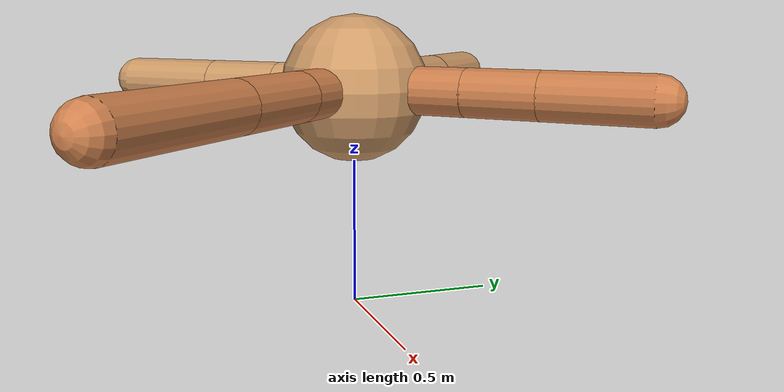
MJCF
<mujoco model="ant">
  <compiler angle="degree" coordinate="local" inertiafromgeom="true" />
  <option integrator="RK4" timestep="0.01" />
  <custom>
    <numeric data="0.0 0.0 0.55 1.0 0.0 0.0 0.0 0.0 1.0 0.0 -1.0 0.0 -1.0 0.0 1.0" name="init_qpos" />
  </custom>
  <default>
    <joint armature="1" damping="1" limited="true" />
    <geom conaffinity="0" condim="3" density="5.0" friction="1.5 0.1 0.1" margin="0.01" rgba="0.8 0.6 0.4 1" />
  </default>
  <worldbody>
    <body name="torso" pos="0 0 0.75">
      <geom name="torso_geom" pos="0 0 0" size="0.25" type="sphere" />

      <body name="front_left_leg" pos="0 0 0">
        <geom fromto="0.0 0.0 0.0 0.28465435557096236 0.28465435557096236 0.0" name="aux_1_geom" size="0.08" type="capsule" rgba=".8 .5 .3 1" />
        <body name="aux_1" pos="0.28465435557096236 0.28465435557096236 0.0">
          <joint axis="0 0 1" name="hip_1" pos="0.0 0.0 0.0" range="-40 40" type="hinge" />
          <geom fromto="0.0 0.0 0.0 0.17265653819570764 0.17265653819570764 0.0" name="left_leg_geom" size="0.08" type="capsule" rgba=".8 .5 .3 1" />
          <body pos="0.17265653819570764 0.17265653819570764 0.0" name="front_left_foot">
            <joint axis="-1 1 0" name="ankle_1" pos="0.0 0.0 0.0" range="30 100" type="hinge" />
            <geom fromto="0.0 0.0 0.0 0.24616526843775657 0.24616526843775657 0.0" name="left_ankle_geom" size="0.08" type="capsule" rgba=".8 .5 .3 1" />
          </body>
        </body>
      </body>
      <body name="front_right_leg" pos="0 0 0">
        <geom fromto="0.0 0.0 0.0 -0.21835712165226956 0.21835712165226956 0.0" name="aux_2_geom" size="0.08" type="capsule" />
        <body name="aux_2" pos="-0.21835712165226956 0.21835712165226956 0.0">
          <joint axis="0 0 1" name="hip_2" pos="0.0 0.0 0.0" range="-40 40" type="hinge" />
          <geom fromto="0.0 0.0 0.0 -0.2678881451400134 0.2678881451400134 0.0" name="right_leg_geom" size="0.08" type="capsule" />
          <body pos="-0.2678881451400134 0.2678881451400134 0.0" name="front_right_foot">
            <joint axis="1 1 0" name="ankle_2" pos="0.0 0.0 0.0" range="-100 -30" type="hinge" />
            <geom fromto="0.0 0.0 0.0 -0.25264492552751694 0.25264492552751694 0.0" name="right_ankle_geom" size="0.08" type="capsule" />
          </body>
        </body>
      </body>
      <body name="left_back_leg" pos="0 0 0">
        <geom fromto="0.0 0.0 0.0 -0.20840767530414164 -0.20840767530414164 0.0" name="aux_3_geom" size="0.08" type="capsule" />
        <body name="aux_3" pos="-0.20840767530414164 -0.20840767530414164 0.0">
          <joint axis="0 0 1" name="hip_3" pos="0.0 0.0 0.0" range="-40 40" type="hinge" />
          <geom fromto="0.0 0.0 0.0 -0.19275888544997344 -0.19275888544997344 0.0" name="back_leg_geom" size="0.08" type="capsule" />
          <body pos="-0.19275888544997344 -0.19275888544997344 0.0" name="left_back_foot">
            <joint axis="-1 1 0" name="ankle_3" pos="0.0 0.0 0.0" range="-100 -30" type="hinge" />
            <geom fromto="0.0 0.0 0.0 -0.2566863456747229 -0.2566863456747229 0.0" name="third_ankle_geom" size="0.08" type="capsule" />
          </body>
        </body>
      </body>
      <body name="right_back_leg" pos="0 0 0">
        <geom fromto="0.0 0.0 0.0 0.259468623096277 -0.259468623096277 0.0" name="aux_4_geom" size="0.08" type="capsule" rgba=".8 .5 .3 1" />
        <body name="aux_4" pos="0.259468623096277 -0.259468623096277 0.0">
          <joint axis="0 0 1" name="hip_4" pos="0.0 0.0 0.0" range="-40 40" type="hinge" />
          <geom fromto="0.0 0.0 0.0 0.23168963883394877 -0.23168963883394877 0.0" name="rightback_leg_geom" size="0.08" type="capsule" rgba=".8 .5 .3 1" />
          <body pos="0.23168963883394877 -0.23168963883394877 0.0" name="right_back_foot">
            <joint axis="1 1 0" name="ankle_4" pos="0.0 0.0 0.0" range="30 100" type="hinge" />
            <geom fromto="0.0 0.0 0.0 0.3951812864764311 -0.3951812864764311 0.0" name="fourth_ankle_geom" size="0.08" type="capsule" rgba=".8 .5 .3 1" />
          </body>
        </body>
      </body>
    </body>
  </worldbody>
  <actuator>
    <motor ctrllimited="true" ctrlrange="-1.0 1.0" joint="hip_4" gear="150" />
    <motor ctrllimited="true" ctrlrange="-1.0 1.0" joint="ankle_4" gear="150" />
    <motor ctrllimited="true" ctrlrange="-1.0 1.0" joint="hip_1" gear="150" />
    <motor ctrllimited="true" ctrlrange="-1.0 1.0" joint="ankle_1" gear="150" />
    <motor ctrllimited="true" ctrlrange="-1.0 1.0" joint="hip_2" gear="150" />
    <motor ctrllimited="true" ctrlrange="-1.0 1.0" joint="ankle_2" gear="150" />
    <motor ctrllimited="true" ctrlrange="-1.0 1.0" joint="hip_3" gear="150" />
    <motor ctrllimited="true" ctrlrange="-1.0 1.0" joint="ankle_3" gear="150" />
  </actuator>
</mujoco>
